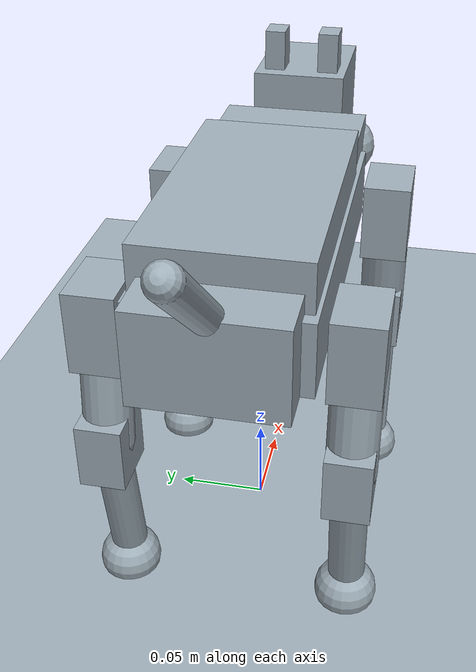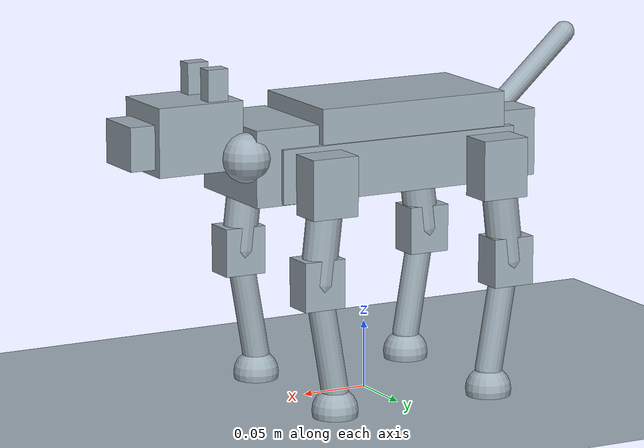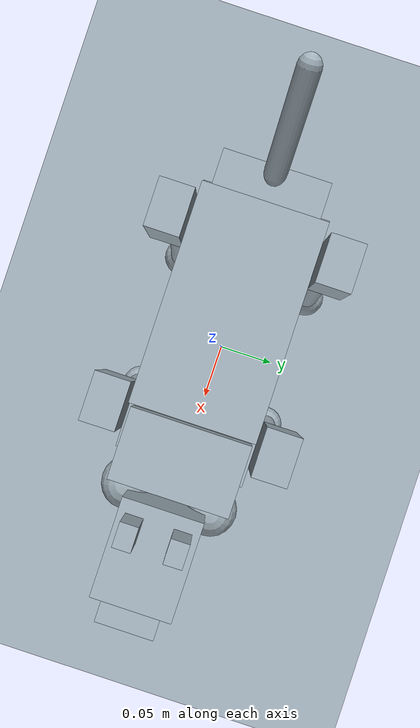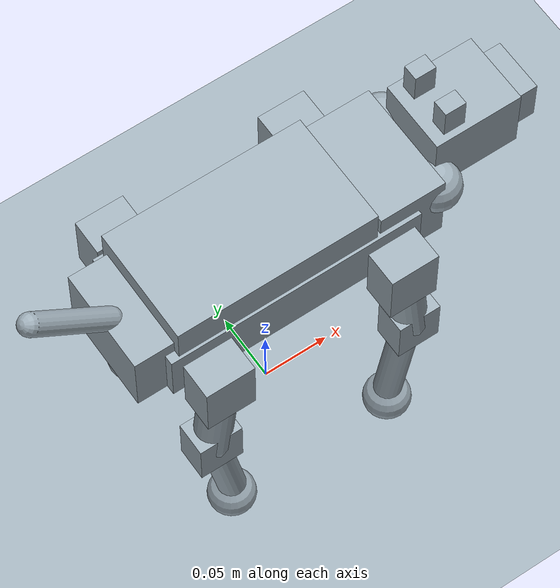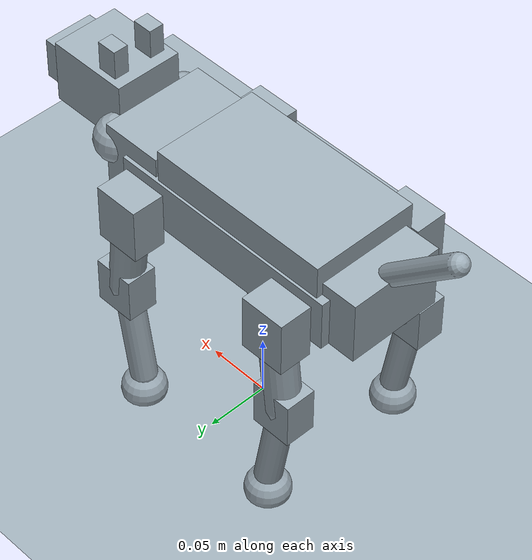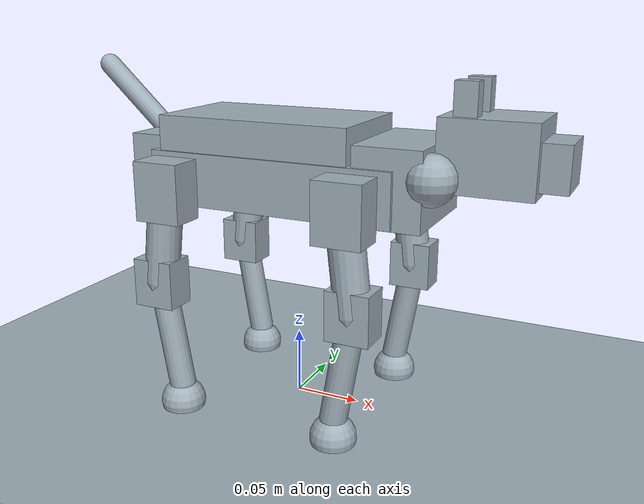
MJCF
<mujoco model="bittle_like_v1_visual">
  <compiler angle="radian" coordinate="local"/>

  <option timestep="0.002" gravity="0 0 -9.81" integrator="RK4"/>

  <default>
    <joint damping="0.18" armature="0.008" limited="true"/>
    <geom friction="1.1 0.08 0.01" rgba="0.62 0.68 0.72 1"/>
    <position kp="12" ctrllimited="true" forcelimited="true" forcerange="-3.5 3.5"/>
  </default>

  <asset>
    <texture name="grid" type="2d" builtin="checker" width="512" height="512"
             rgb1="0.22 0.25 0.25" rgb2="0.36 0.4 0.4"/>
    <material name="grid" texture="grid" texrepeat="4 4"/>
    <material name="shell_black" rgba="0.07 0.08 0.09 1"/>
    <material name="petoi_yellow" rgba="0.95 0.68 0.08 1"/>
    <material name="petoi_blue" rgba="0.08 0.18 0.72 1"/>
    <material name="leg_red" rgba="0.82 0.08 0.16 1"/>
    <material name="servo_black" rgba="0.03 0.03 0.035 1"/>
    <material name="foot_blue" rgba="0.05 0.12 0.6 1"/>
  </asset>

  <worldbody>
    <light pos="0 0 2" dir="0 0 -1"/>
    <geom name="floor" type="plane" size="5 5 0.05" material="grid"/>

    <body name="torso" pos="0 0 0.17">
      <freejoint name="root"/>

      <!-- Visual proportions target Bittle's roughly 190-200 mm body length class. -->
      <geom name="lower_chassis" type="box" pos="-0.005 0 0.005" size="0.095 0.045 0.020" mass="0.16" material="petoi_yellow"/>
      <geom name="top_shell" type="box" pos="-0.018 0 0.033" size="0.075 0.043 0.018" mass="0.10" material="shell_black"/>
      <geom name="front_chest" type="box" pos="0.085 0 0.012" size="0.025 0.042 0.028" mass="0.045" material="petoi_yellow"/>
      <geom name="rear_shell" type="box" pos="-0.100 0 0.010" size="0.022 0.038 0.025" mass="0.035" material="petoi_yellow"/>

      <body name="head_neck_visual" pos="0.120 0 0.025">
        <geom name="neck_blue_left" type="sphere" pos="-0.008 0.030 -0.006" size="0.018" mass="0.008" material="petoi_blue"/>
        <geom name="neck_blue_right" type="sphere" pos="-0.008 -0.030 -0.006" size="0.018" mass="0.008" material="petoi_blue"/>
        <geom name="head" type="box" pos="0.026 0 0.010" size="0.033 0.027 0.025" mass="0.035" material="petoi_yellow"/>
        <geom name="snout" type="box" pos="0.060 0 0.006" size="0.018 0.020 0.016" mass="0.010" material="petoi_yellow"/>
        <geom name="left_ear" type="box" pos="0.010 0.016 0.040" size="0.008 0.006 0.018" mass="0.003" material="petoi_yellow"/>
        <geom name="right_ear" type="box" pos="0.010 -0.016 0.040" size="0.008 0.006 0.018" mass="0.003" material="petoi_yellow"/>
      </body>

      <body name="tail_visual" pos="-0.115 0 0.032">
        <geom name="tail" type="capsule" fromto="0 0 0 -0.055 0 0.050" size="0.008" mass="0.012" material="shell_black"/>
      </body>

      <body name="front_left_thigh" pos="0.064 0.062 0">
        <joint name="front_left_hip" type="hinge" axis="0 1 0" range="-0.85 0.85"/>
        <geom name="front_left_hip_servo" type="box" pos="0 0 0" size="0.018 0.013 0.022" mass="0.018" material="servo_black"/>
        <geom name="front_left_upper_cover" type="capsule" fromto="0 0 0 0.008 0 -0.070" size="0.013" mass="0.024" material="leg_red"/>
        <body name="front_left_calf" pos="0.008 0 -0.070">
          <joint name="front_left_knee" type="hinge" axis="0 1 0" range="-1.35 0.15"/>
          <geom name="front_left_knee_servo" type="box" pos="0 0 0" size="0.016 0.012 0.018" mass="0.014" material="servo_black"/>
          <geom name="front_left_lower_link" type="capsule" fromto="0 0 0 -0.014 0 -0.082" size="0.010" mass="0.020" material="petoi_blue"/>
          <geom name="front_left_foot" type="sphere" pos="-0.014 0 -0.096" size="0.017" mass="0.014" material="foot_blue"/>
        </body>
      </body>

      <body name="front_right_thigh" pos="0.064 -0.062 0">
        <joint name="front_right_hip" type="hinge" axis="0 1 0" range="-0.85 0.85"/>
        <geom name="front_right_hip_servo" type="box" pos="0 0 0" size="0.018 0.013 0.022" mass="0.018" material="servo_black"/>
        <geom name="front_right_upper_cover" type="capsule" fromto="0 0 0 0.008 0 -0.070" size="0.013" mass="0.024" material="leg_red"/>
        <body name="front_right_calf" pos="0.008 0 -0.070">
          <joint name="front_right_knee" type="hinge" axis="0 1 0" range="-1.35 0.15"/>
          <geom name="front_right_knee_servo" type="box" pos="0 0 0" size="0.016 0.012 0.018" mass="0.014" material="servo_black"/>
          <geom name="front_right_lower_link" type="capsule" fromto="0 0 0 -0.014 0 -0.082" size="0.010" mass="0.020" material="petoi_blue"/>
          <geom name="front_right_foot" type="sphere" pos="-0.014 0 -0.096" size="0.017" mass="0.014" material="foot_blue"/>
        </body>
      </body>

      <body name="rear_left_thigh" pos="-0.076 0.062 0">
        <joint name="rear_left_hip" type="hinge" axis="0 1 0" range="-0.85 0.85"/>
        <geom name="rear_left_hip_servo" type="box" pos="0 0 0" size="0.018 0.013 0.022" mass="0.018" material="servo_black"/>
        <geom name="rear_left_upper_cover" type="capsule" fromto="0 0 0 -0.008 0 -0.070" size="0.013" mass="0.024" material="leg_red"/>
        <body name="rear_left_calf" pos="-0.008 0 -0.070">
          <joint name="rear_left_knee" type="hinge" axis="0 1 0" range="-1.35 0.15"/>
          <geom name="rear_left_knee_servo" type="box" pos="0 0 0" size="0.016 0.012 0.018" mass="0.014" material="servo_black"/>
          <geom name="rear_left_lower_link" type="capsule" fromto="0 0 0 0.014 0 -0.082" size="0.010" mass="0.020" material="petoi_blue"/>
          <geom name="rear_left_foot" type="sphere" pos="0.014 0 -0.096" size="0.017" mass="0.014" material="foot_blue"/>
        </body>
      </body>

      <body name="rear_right_thigh" pos="-0.076 -0.062 0">
        <joint name="rear_right_hip" type="hinge" axis="0 1 0" range="-0.85 0.85"/>
        <geom name="rear_right_hip_servo" type="box" pos="0 0 0" size="0.018 0.013 0.022" mass="0.018" material="servo_black"/>
        <geom name="rear_right_upper_cover" type="capsule" fromto="0 0 0 -0.008 0 -0.070" size="0.013" mass="0.024" material="leg_red"/>
        <body name="rear_right_calf" pos="-0.008 0 -0.070">
          <joint name="rear_right_knee" type="hinge" axis="0 1 0" range="-1.35 0.15"/>
          <geom name="rear_right_knee_servo" type="box" pos="0 0 0" size="0.016 0.012 0.018" mass="0.014" material="servo_black"/>
          <geom name="rear_right_lower_link" type="capsule" fromto="0 0 0 0.014 0 -0.082" size="0.010" mass="0.020" material="petoi_blue"/>
          <geom name="rear_right_foot" type="sphere" pos="0.014 0 -0.096" size="0.017" mass="0.014" material="foot_blue"/>
        </body>
      </body>
    </body>
  </worldbody>

  <actuator>
    <position name="front_left_hip_pos" joint="front_left_hip" ctrlrange="-0.75 0.75"/>
    <position name="front_left_knee_pos" joint="front_left_knee" ctrlrange="-1.25 0.05"/>
    <position name="front_right_hip_pos" joint="front_right_hip" ctrlrange="-0.75 0.75"/>
    <position name="front_right_knee_pos" joint="front_right_knee" ctrlrange="-1.25 0.05"/>
    <position name="rear_left_hip_pos" joint="rear_left_hip" ctrlrange="-0.75 0.75"/>
    <position name="rear_left_knee_pos" joint="rear_left_knee" ctrlrange="-1.25 0.05"/>
    <position name="rear_right_hip_pos" joint="rear_right_hip" ctrlrange="-0.75 0.75"/>
    <position name="rear_right_knee_pos" joint="rear_right_knee" ctrlrange="-1.25 0.05"/>
  </actuator>
</mujoco>
